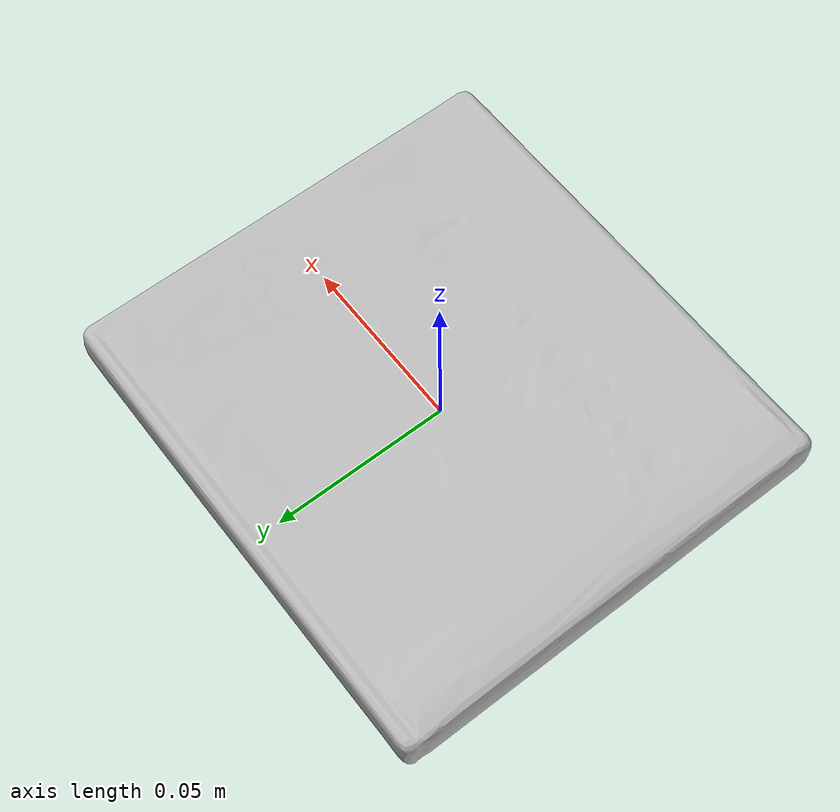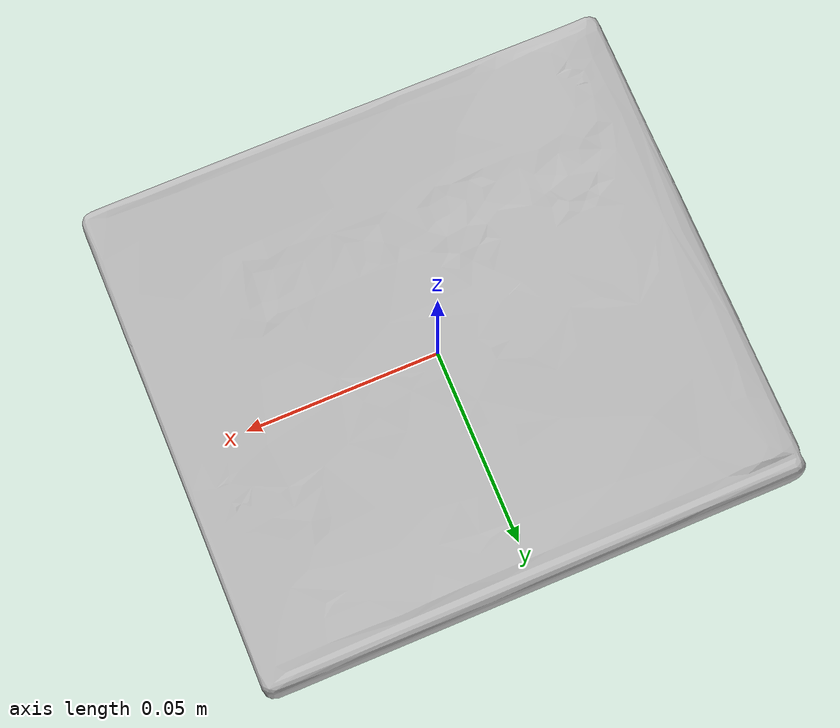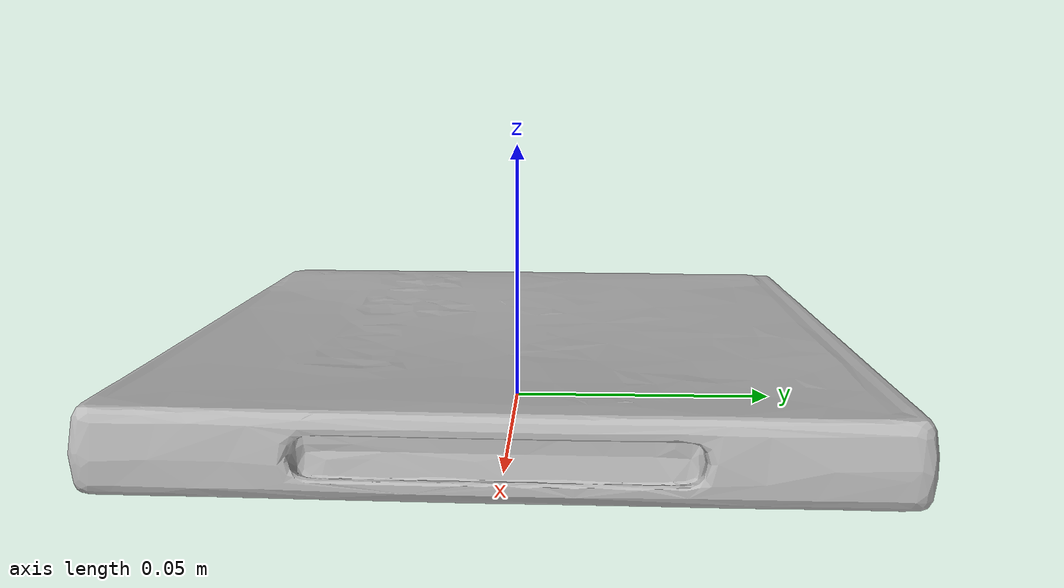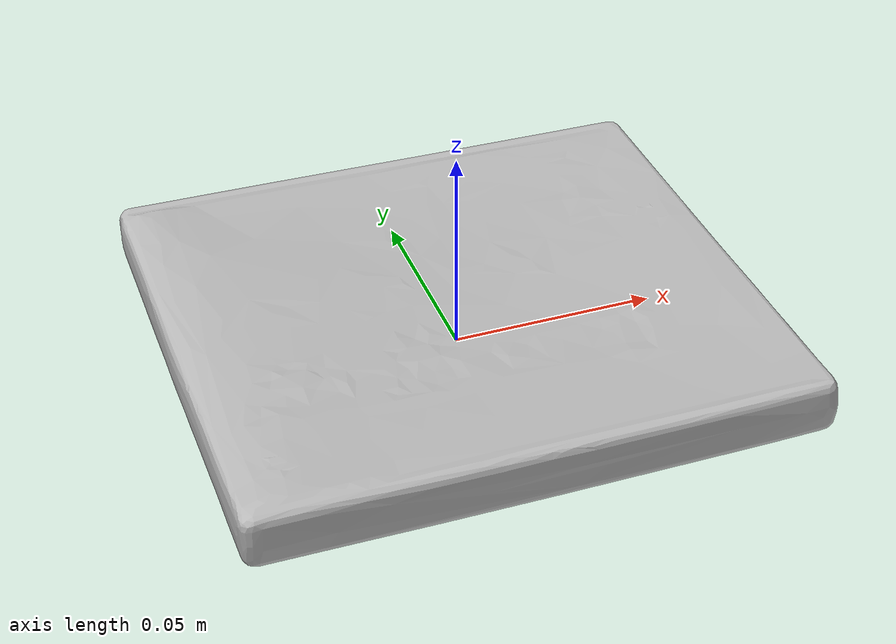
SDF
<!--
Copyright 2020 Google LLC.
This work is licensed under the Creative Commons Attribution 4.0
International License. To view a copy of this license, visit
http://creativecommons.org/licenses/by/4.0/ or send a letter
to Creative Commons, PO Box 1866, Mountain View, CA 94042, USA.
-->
<?xml version="1.0" ?>
<sdf version="1.6">
  <model name="Mario_Luigi_Dream_Team_Nintendo_3DS_Game">
    <link name="link_0">
      <visual name="visual">
        <geometry>
          <mesh>
            <uri>meshes/model.obj</uri>
          </mesh>
        </geometry>
      </visual>
      <collision name="collision_0">
        <geometry>
          <mesh>
            <uri>meshes/model.obj</uri>
          </mesh>
        </geometry>
      </collision>
    </link>
  </model>
</sdf>
